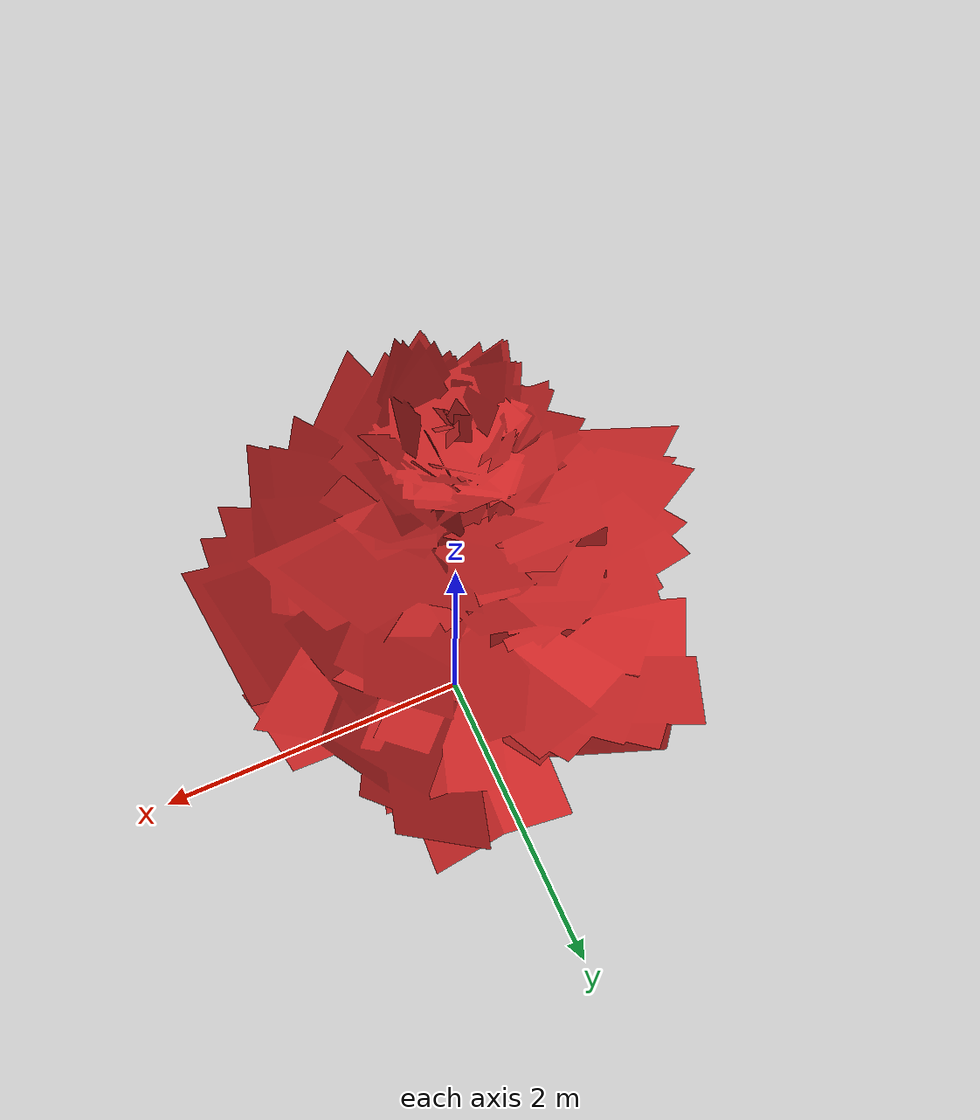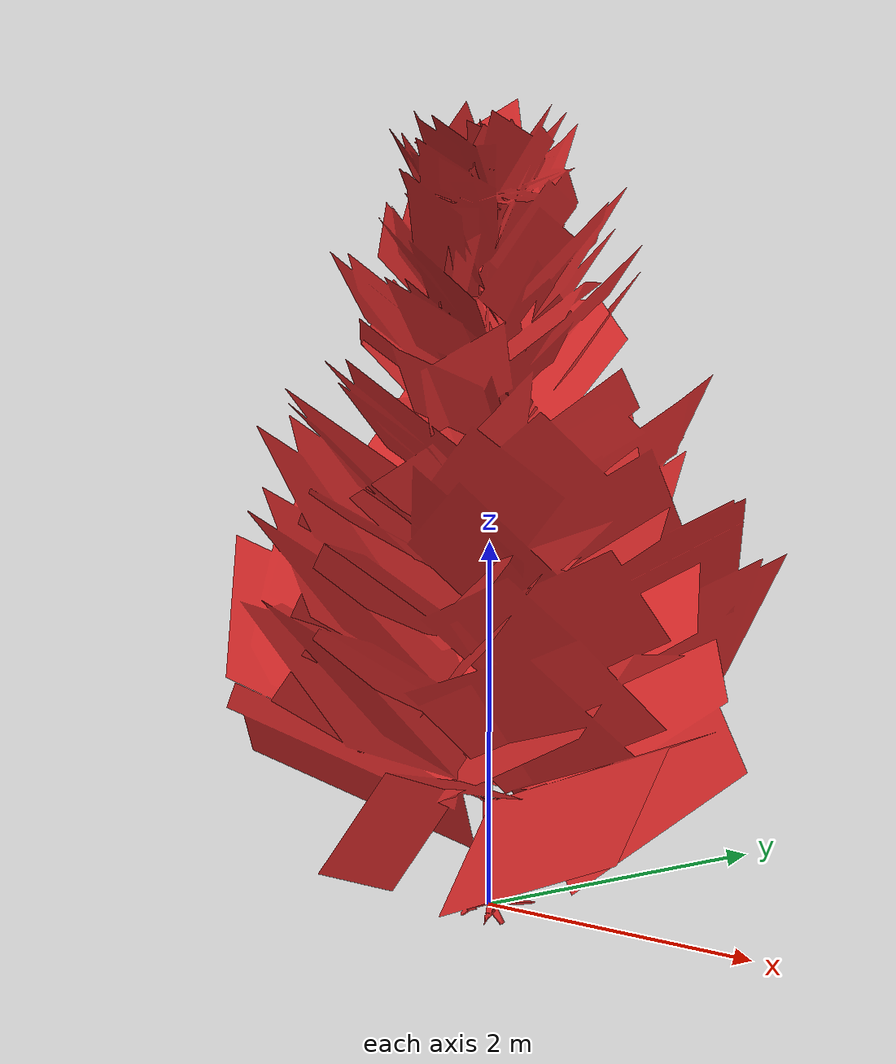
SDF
<?xml version="1.0" ?>
<sdf version="1.5">
  <model name="red_spruce">
    <static>true</static>
    <link name="link">
      <collision name="collision">
        <pose>0 0 2.15 0 -0 0</pose>
        <geometry>
          <box>
            <size>1.75 2 4.3</size>
          </box>
        </geometry>
      </collision>

      <visual name="visual">
        <pose>0 0 0 0 0 0</pose>
        <geometry>
          <mesh>
            <uri>model://red_spruce/meshes/red_spruce_lowpoly.dae</uri>
          </mesh>
        </geometry>
        <material>
          <script>
            <uri>model://red_spruce/materials/scripts</uri>
            <uri>model://red_spruce/materials/textures</uri>
            <name>trees/red_spruce</name>
          </script>
        </material>
      </visual>

    </link>
  </model>
</sdf>
